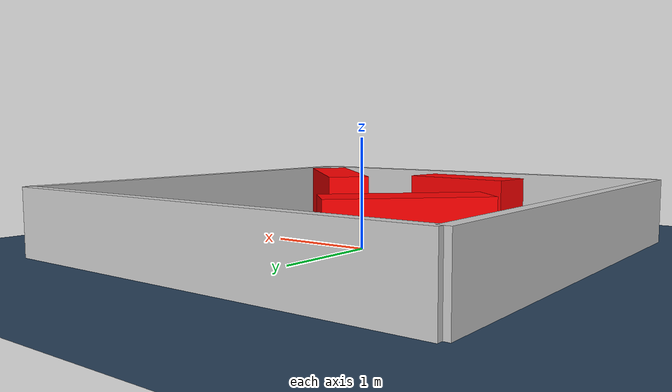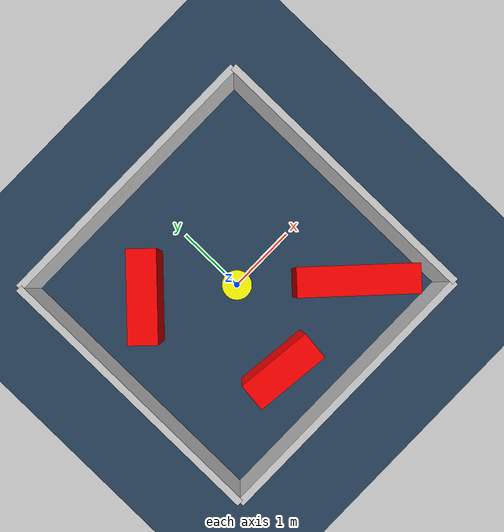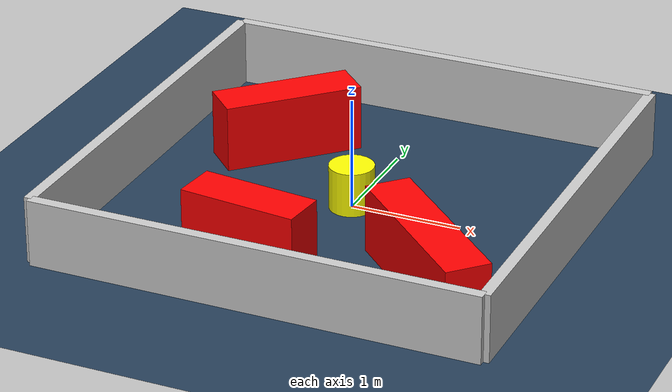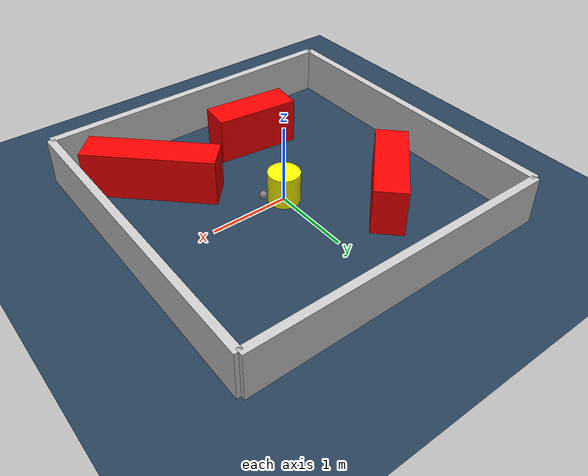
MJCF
<?xml version="1.0" ?>
<mujoco model="generated_environment">
  <option timestep="0.01" integrator="RK4" cone="elliptic"/>
  <default>
    <geom density="1"/>
  </default>
  <asset>
    <texture builtin="gradient" height="3072" rgb1="0.3 0.5 0.7" rgb2="0 0 0" type="skybox" width="512"/>
    <texture builtin="checker" height="300" mark="edge" markrgb="0.8 0.8 0.8" name="groundplane" rgb1="0.2 0.3 0.4" rgb2="0.1 0.2 0.3" type="2d" width="300"/>
    <material name="groundplane" reflectance="0.2" texrepeat="5 5" texture="groundplane" texuniform="true"/>
    <material name="robot" rgba="0.0 1.0 0.0 1"/>
  </asset>
  <worldbody>
    <light dir="0 0 -1" directional="true" pos="0 0 1.5"/>
    <geom condim="4" friction="1.0 0.005 0.001" material="groundplane" name="floor" size="0 0 0.05" type="plane"/>
    <body name="walls">
      <geom name="wall_1" condim="4" pos="-2.0 0.0 0.3" rgba="0.800000011920929 0.800000011920929 0.800000011920929 1.0" size="0.05 2.0 0.3" type="box"/>
      <geom name="wall_2" condim="4" pos="2.0 0.0 0.3" rgba="0.800000011920929 0.800000011920929 0.800000011920929 1.0" size="0.05 2.0 0.3" type="box"/>
      <geom name="wall_3" condim="4" pos="0.0 -2.0 0.3" rgba="0.800000011920929 0.800000011920929 0.800000011920929 1.0" size="2.0 0.05 0.3" type="box"/>
      <geom name="wall_4" condim="4" pos="0.0 2.0 0.3" rgba="0.800000011920929 0.800000011920929 0.800000011920929 1.0" size="2.0 0.05 0.3" type="box"/>
    </body>
    <body name="robot">
      <joint name="joint_x" type="slide" pos="0 0 0" axis="1 0 0"/>
      <joint name="joint_y" type="slide" pos="0 0 0" axis="0 1 0"/>
      <geom name="robot" type="sphere" pos="0.3 0.0 0.2" size="0.05" mass="5." friction="1.0 0.005 0.0001" condim="4" rgba="0.5 0.5 0.5 1.0"/>
      <site name="sensor_ball"/>
    </body>
    <body name="obstacle_movable_1">
      <geom name="obstacle_movable_1" condim="4" pos="0.0 0.0 0.2" euler="0 0 0.0" friction="1.0 0.005 0.001" rgba="1.0 1.0 0.0 1.0" size="0.2 0.2 0.0" type="cylinder" mass="0.1"/>
      <joint type="free"/>
    </body>
    <body name="obstacle_2_static">
      <geom name="obstacle_2_static" condim="4" pos="1.1462550327868564 -1.09535583451828 0.3" euler="0 0 136.27019213455551" friction="1.0 0.005 0.001" rgba="1 0 0 1" size="0.8099743508244597 0.2 0.3" type="box"/>
    </body>
    <body name="obstacle_3_static">
      <geom name="obstacle_3_static" condim="4" pos="-0.38735955900896557 -1.2168523644086746 0.3" euler="0 0 353.61200098054746" friction="1.0 0.005 0.001" rgba="1 0 0 1" size="0.5342433273709265 0.2 0.3" type="box"/>
    </body>
    <body name="obstacle_4_static">
      <geom name="obstacle_4_static" condim="4" pos="-0.9713763432113742 0.7774277368521945 0.3" euler="0 0 45.31926903874973" friction="1.0 0.005 0.001" rgba="1 0 0 1" size="0.6298263773039439 0.2 0.3" type="box"/>
    </body>
  </worldbody>
  <actuator>
    <motor name="actuator_x" joint="joint_x" gear="1" ctrlrange="-1 1"/>
    <motor name="actuator_y" joint="joint_y" gear="1" ctrlrange="-1 1"/>
  </actuator>
</mujoco>
